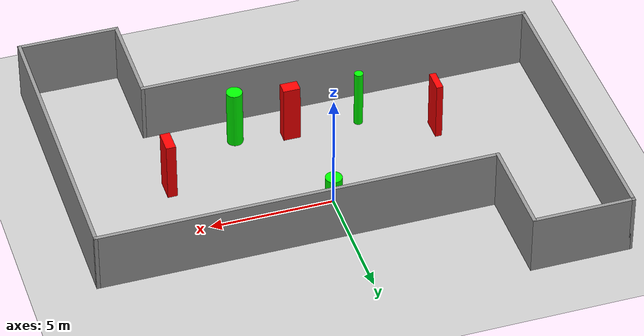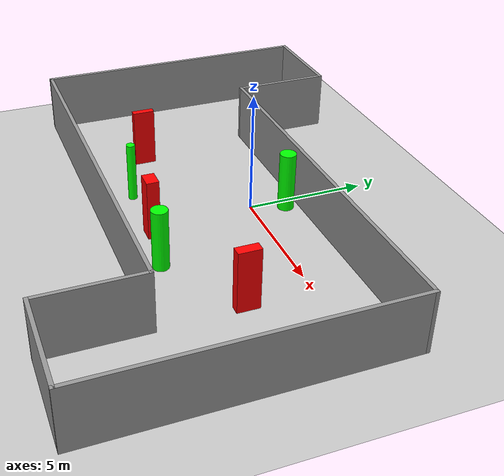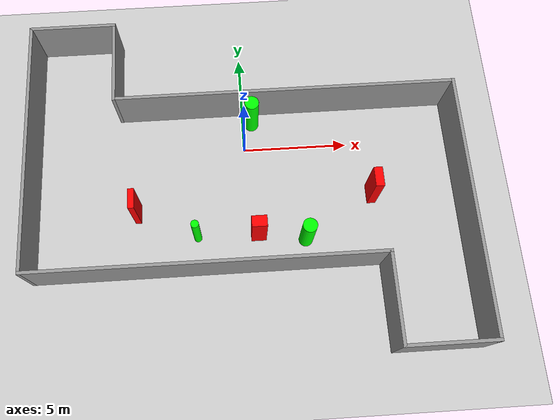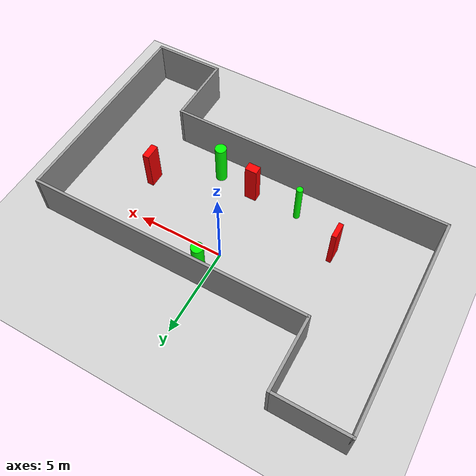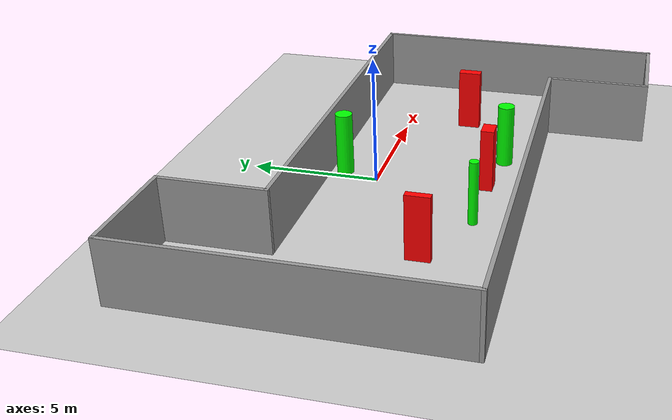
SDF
<sdf version="1.7">
 <world name="default">
  <light name="sun" type="directional">
   <pose>0 0 10 0 -0 0</pose>
   <diffuse>0.8 0.8 0.8 1</diffuse>
   <specular>0.2 0.2 0.2 1</specular>
   <attenuation>
    <range>1000</range>
    <constant>0.9</constant>
    <linear>0.01</linear>
    <quadratic>0.001</quadratic>
   </attenuation>
   <direction>-0.5 0.1 -0.9</direction>
   <spot><inner_angle>0</inner_angle><outer_angle>0</outer_angle><falloff>0</falloff></spot>
  </light>
  <model name="ground_plane">
   <static>1</static>
   <link name="link">
    <collision name="collision">
     <geometry><plane><normal>0 0 1</normal><size>100 100</size></plane></geometry>
     <surface>
      <contact><collide_bitmask>65535</collide_bitmask></contact>
      <friction><ode><mu>100</mu><mu2>50</mu2></ode></friction>
     </surface>
    </collision>
    <visual name="visual">
     <cast_shadows>0</cast_shadows>
     <geometry><plane><normal>0 0 1</normal><size>100 100</size></plane></geometry>
     <material>
      <script><uri>file://media/materials/scripts/gazebo.material</uri><name>Gazebo/Grey</name></script>
     </material>
    </visual>
   </link>
  </model>
  <gravity>0 0 -9.8</gravity>
  <magnetic_field>6e-06 2.3e-05 -4.2e-05</magnetic_field>
  <atmosphere type="adiabatic"/>
  <physics type="ode">
   <max_step_size>0.001</max_step_size>
   <real_time_factor>1</real_time_factor>
   <real_time_update_rate>1000</real_time_update_rate>
  </physics>
  <scene><ambient>0.4 0.4 0.4 1</ambient><background>0.7 0.7 0.7 1</background><shadows>1</shadows></scene>
  <spherical_coordinates>
   <surface_model>EARTH_WGS84</surface_model>
   <latitude_deg>0</latitude_deg>
   <longitude_deg>0</longitude_deg>
   <elevation>0</elevation>
   <heading_deg>0</heading_deg>
  </spherical_coordinates>
  <model name="my_base_walls">
   <link name="Wall_13">
    <collision name="Wall_13_Collision">
     <geometry><box><size>12.15 0.15 2.5</size></box></geometry>
     <pose>0 0 1.25 0 -0 0</pose>
    </collision>
    <visual name="Wall_13_Visual">
     <pose>0 0 1.25 0 -0 0</pose>
     <geometry><box><size>12.15 0.15 2.5</size></box></geometry>
     <material>
      <script><uri>file://media/materials/scripts/gazebo.material</uri><name>Gazebo/Grey</name></script>
      <ambient>1 1 1 1</ambient>
     </material>
     <meta><layer>0</layer></meta>
    </visual>
    <pose>10 -2 0 0 -0 1.5708</pose>
   </link>
   <link name="Wall_15">
    <collision name="Wall_15_Collision">
     <geometry><box><size>16.15 0.15 2.5</size></box></geometry>
     <pose>0 0 1.25 0 -0 0</pose>
    </collision>
    <visual name="Wall_15_Visual">
     <pose>0 0 1.25 0 -0 0</pose>
     <geometry><box><size>16.15 0.15 2.5</size></box></geometry>
     <material>
      <script><uri>file://media/materials/scripts/gazebo.material</uri><name>Gazebo/Grey</name></script>
      <ambient>1 1 1 1</ambient>
     </material>
     <meta><layer>0</layer></meta>
    </visual>
    <pose>2 4 0 0 -0 3.14159</pose>
   </link>
   <link name="Wall_17">
    <collision name="Wall_17_Collision">
     <geometry><box><size>4.15 0.15 2.5</size></box></geometry>
     <pose>0 0 1.25 0 -0 0</pose>
    </collision>
    <visual name="Wall_17_Visual">
     <pose>0 0 1.25 0 -0 0</pose>
     <geometry><box><size>4.15 0.15 2.5</size></box></geometry>
     <material>
      <script><uri>file://media/materials/scripts/gazebo.material</uri><name>Gazebo/Grey</name></script>
      <ambient>1 1 1 1</ambient>
     </material>
     <meta><layer>0</layer></meta>
    </visual>
    <pose>6 -6 0 0 -0 -1.5708</pose>
   </link>
   <link name="Wall_19">
    <collision name="Wall_19_Collision">
     <geometry><box><size>12.15 0.15 2.5</size></box></geometry>
     <pose>0 0 1.25 0 -0 0</pose>
    </collision>
    <visual name="Wall_19_Visual">
     <pose>0 0 1.25 0 -0 0</pose>
     <geometry><box><size>12.15 0.15 2.5</size></box></geometry>
     <material>
      <script><uri>file://media/materials/scripts/gazebo.material</uri><name>Gazebo/Grey</name></script>
      <ambient>1 1 1 1</ambient>
     </material>
     <meta><layer>0</layer></meta>
    </visual>
    <pose>-10 2 0 0 -0 1.5708</pose>
   </link>
   <link name="Wall_21">
    <collision name="Wall_21_Collision">
     <geometry><box><size>4.15 0.15 2.5</size></box></geometry>
     <pose>0 0 1.25 0 -0 0</pose>
    </collision>
    <visual name="Wall_21_Visual">
     <pose>0 0 1.25 0 -0 0</pose>
     <geometry><box><size>4.15 0.15 2.5</size></box></geometry>
     <material>
      <script><uri>file://media/materials/scripts/gazebo.material</uri><name>Gazebo/Grey</name></script>
      <ambient>1 1 1 1</ambient>
     </material>
     <meta><layer>0</layer></meta>
    </visual>
    <pose>-8 8 0 0 -0 0</pose>
   </link>
   <link name="Wall_23">
    <collision name="Wall_23_Collision">
     <geometry><box><size>4.15 0.15 2.5</size></box></geometry>
     <pose>0 0 1.25 0 -0 0</pose>
    </collision>
    <visual name="Wall_23_Visual">
     <pose>0 0 1.25 0 -0 0</pose>
     <geometry><box><size>4.15 0.15 2.5</size></box></geometry>
     <material>
      <script><uri>file://media/materials/scripts/gazebo.material</uri><name>Gazebo/Grey</name></script>
      <ambient>1 1 1 1</ambient>
     </material>
     <meta><layer>0</layer></meta>
    </visual>
    <pose>-6 6 0 0 -0 -1.5708</pose>
   </link>
   <link name="Wall_25">
    <collision name="Wall_25_Collision">
     <geometry><box><size>4.15 0.15 2.5</size></box></geometry>
     <pose>0 0 1.25 0 -0 0</pose>
    </collision>
    <visual name="Wall_25_Visual">
     <pose>0 0 1.25 0 -0 0</pose>
     <geometry><box><size>4.15 0.15 2.5</size></box></geometry>
     <material>
      <script><uri>file://media/materials/scripts/gazebo.material</uri><name>Gazebo/Grey</name></script>
      <ambient>1 1 1 1</ambient>
     </material>
     <meta><layer>0</layer></meta>
    </visual>
    <pose>8 -8 0 0 -0 0</pose>
   </link>
   <link name="Wall_9">
    <collision name="Wall_9_Collision">
     <geometry><box><size>16.15 0.15 2.5</size></box></geometry>
     <pose>0 0 1.25 0 -0 0</pose>
    </collision>
    <visual name="Wall_9_Visual">
     <pose>0 0 1.25 0 -0 0</pose>
     <geometry><box><size>16.15 0.15 2.5</size></box></geometry>
     <material>
      <script><uri>file://media/materials/scripts/gazebo.material</uri><name>Gazebo/Grey</name></script>
      <ambient>1 1 1 1</ambient>
     </material>
     <meta><layer>0</layer></meta>
    </visual>
    <pose>-2 -4 0 0 -0 3.14159</pose>
   </link>
   <static>1</static>
   <pose>-0 -2 0 0 -0 0</pose>
  </model>
  <model name="cylinder1">
   <static>1</static>
   <link name="link">
    <inertial>
     <mass>1</mass>
     <inertia><ixx>0.5</ixx><ixy>0</ixy><ixz>0</ixz><iyy>0.5</iyy><iyz>0</iyz><izz>1</izz></inertia>
    </inertial>
    <collision name="collision">
     <geometry><cylinder><radius>0.3343905729553147</radius><length>2.5</length></cylinder></geometry>
    </collision>
    <visual name="visual">
     <geometry><cylinder><radius>0.3343905729553147</radius><length>2.5</length></cylinder></geometry>
     <material>
      <ambient>0 1 0 1</ambient>
      <diffuse>0 1 0 1</diffuse>
      <specular>0.1 0.1 0.1 1</specular>
      <emissive>0 0 0 0</emissive>
     </material>
    </visual>
   </link>
   <pose>0.4401614384857453 1.3806371946571243 1.25 0 0 0</pose>
  </model>
  <model name="cylinder2">
   <static>1</static>
   <link name="link">
    <inertial>
     <mass>1</mass>
     <inertia><ixx>0.5</ixx><ixy>0</ixy><ixz>0</ixz><iyy>0.5</iyy><iyz>0</iyz><izz>1</izz></inertia>
    </inertial>
    <collision name="collision">
     <geometry><cylinder><radius>0.327023162788241</radius><length>2.5</length></cylinder></geometry>
    </collision>
    <visual name="visual">
     <geometry><cylinder><radius>0.327023162788241</radius><length>2.5</length></cylinder></geometry>
     <material>
      <ambient>0 1 0 1</ambient>
      <diffuse>0 1 0 1</diffuse>
      <specular>0.1 0.1 0.1 1</specular>
      <emissive>0 0 0 0</emissive>
     </material>
    </visual>
   </link>
   <pose>2.615829850893851 -4.670349995726759 1.25 0 0 0</pose>
  </model>
  <model name="cylinder3">
   <static>1</static>
   <link name="link">
    <inertial>
     <mass>1</mass>
     <inertia><ixx>0.5</ixx><ixy>0</ixy><ixz>0</ixz><iyy>0.5</iyy><iyz>0</iyz><izz>1</izz></inertia>
    </inertial>
    <collision name="collision">
     <geometry><cylinder><radius>0.18091619081425162</radius><length>2.5</length></cylinder></geometry>
    </collision>
    <visual name="visual">
     <geometry><cylinder><radius>0.18091619081425162</radius><length>2.5</length></cylinder></geometry>
     <material>
      <ambient>0 1 0 1</ambient>
      <diffuse>0 1 0 1</diffuse>
      <specular>0.1 0.1 0.1 1</specular>
      <emissive>0 0 0 0</emissive>
     </material>
    </visual>
   </link>
   <pose>-2.4234104121209823 -4.304215191997613 1.25 0 0 0</pose>
  </model>
  <model name="box1">
   <static>1</static>
   <link name="link">
    <inertial>
     <mass>1</mass>
     <inertia><ixx>0.083</ixx><ixy>0</ixy><ixz>0</ixz><iyy>0.083</iyy><iyz>0</iyz><izz>0.083</izz></inertia>
    </inertial>
    <collision name="collision">
     <geometry><box><size>0.6953903796293905 0.5027396160752627 2.5</size></box></geometry>
    </collision>
    <visual name="visual">
     <geometry><box><size>0.6953903796293905 0.5027396160752627 2.5</size></box></geometry>
     <material>
      <ambient>1 0 0 1</ambient>
      <diffuse>1 0 0 1</diffuse>
      <specular>0.1 0.1 0.1 1</specular>
      <emissive>0 0 0 0</emissive>
     </material>
    </visual>
    <sensor name="my_contact" type="contact">
     <contact><collision>box_collision</collision><topic>__default_topic__</topic></contact>
    </sensor>
   </link>
   <pose>0.4169739782302724 -4.338883188557931 1.25 0 0 0</pose>
  </model>
  <model name="box2">
   <static>1</static>
   <link name="link">
    <inertial>
     <mass>1</mass>
     <inertia><ixx>0.083</ixx><ixy>0</ixy><ixz>0</ixz><iyy>0.083</iyy><iyz>0</iyz><izz>0.083</izz></inertia>
    </inertial>
    <collision name="collision">
     <geometry><box><size>0.3958318382518347 0.9012843819727893 2.5</size></box></geometry>
    </collision>
    <visual name="visual">
     <geometry><box><size>0.3958318382518347 0.9012843819727893 2.5</size></box></geometry>
     <material>
      <ambient>1 0 0 1</ambient>
      <diffuse>1 0 0 1</diffuse>
      <specular>0.1 0.1 0.1 1</specular>
      <emissive>0 0 0 0</emissive>
     </material>
    </visual>
    <sensor name="my_contact" type="contact">
     <contact><collision>box_collision</collision><topic>__default_topic__</topic></contact>
    </sensor>
   </link>
   <pose>5.9044209919075055 -2.606561616067105 1.25 0 0 0</pose>
  </model>
  <model name="box3">
   <static>1</static>
   <link name="link">
    <inertial>
     <mass>1</mass>
     <inertia><ixx>0.083</ixx><ixy>0</ixy><ixz>0</ixz><iyy>0.083</iyy><iyz>0</iyz><izz>0.083</izz></inertia>
    </inertial>
    <collision name="collision">
     <geometry><box><size>0.2719816268588301 0.9129492647973932 2.5</size></box></geometry>
    </collision>
    <visual name="visual">
     <geometry><box><size>0.2719816268588301 0.9129492647973932 2.5</size></box></geometry>
     <material>
      <ambient>1 0 0 1</ambient>
      <diffuse>1 0 0 1</diffuse>
      <specular>0.1 0.1 0.1 1</specular>
      <emissive>0 0 0 0</emissive>
     </material>
    </visual>
    <sensor name="my_contact" type="contact">
     <contact><collision>box_collision</collision><topic>__default_topic__</topic></contact>
    </sensor>
   </link>
   <pose>-5.206040137539761 -2.9545829726057704 1.25 0 0 0</pose>
  </model>
 </world>
</sdf>
